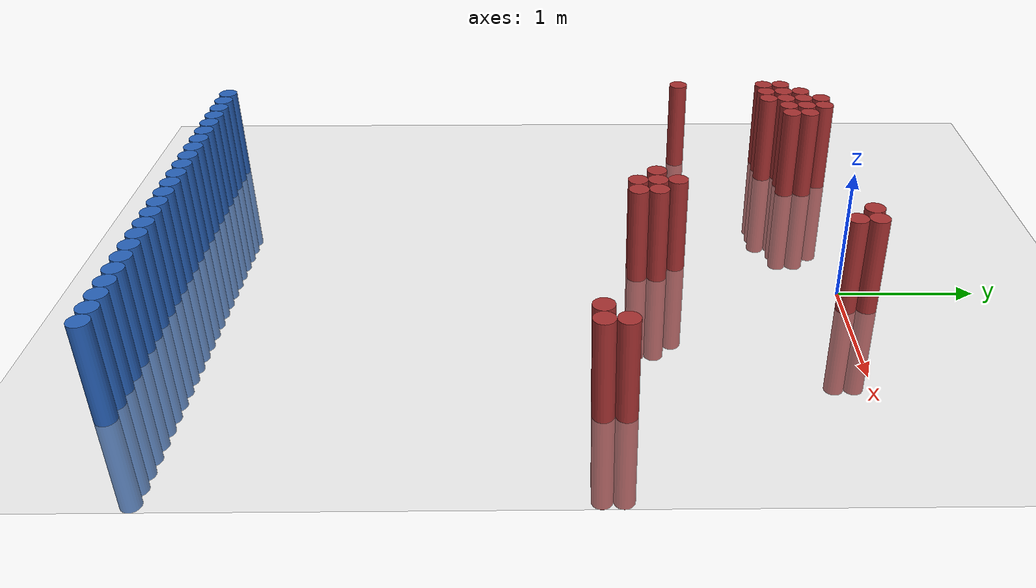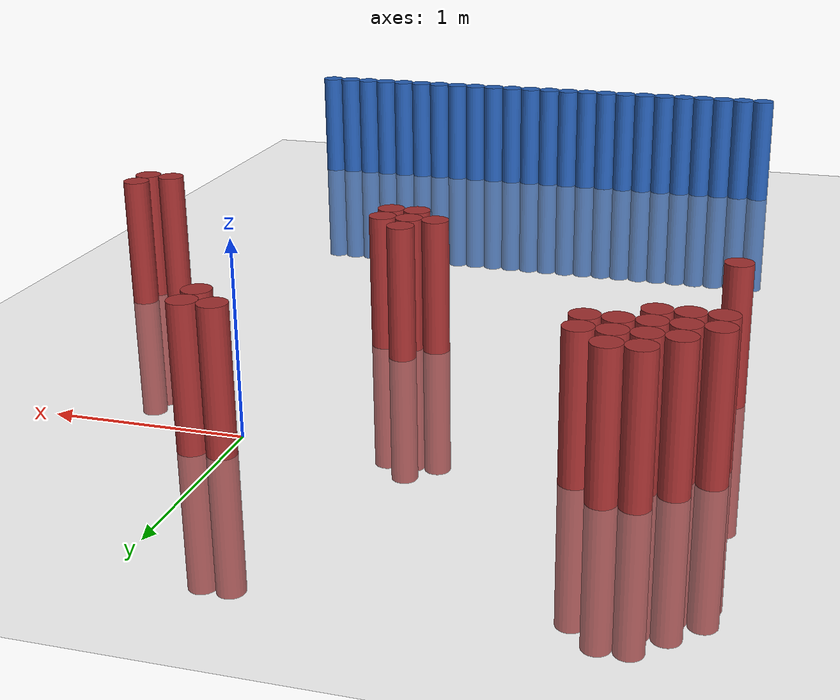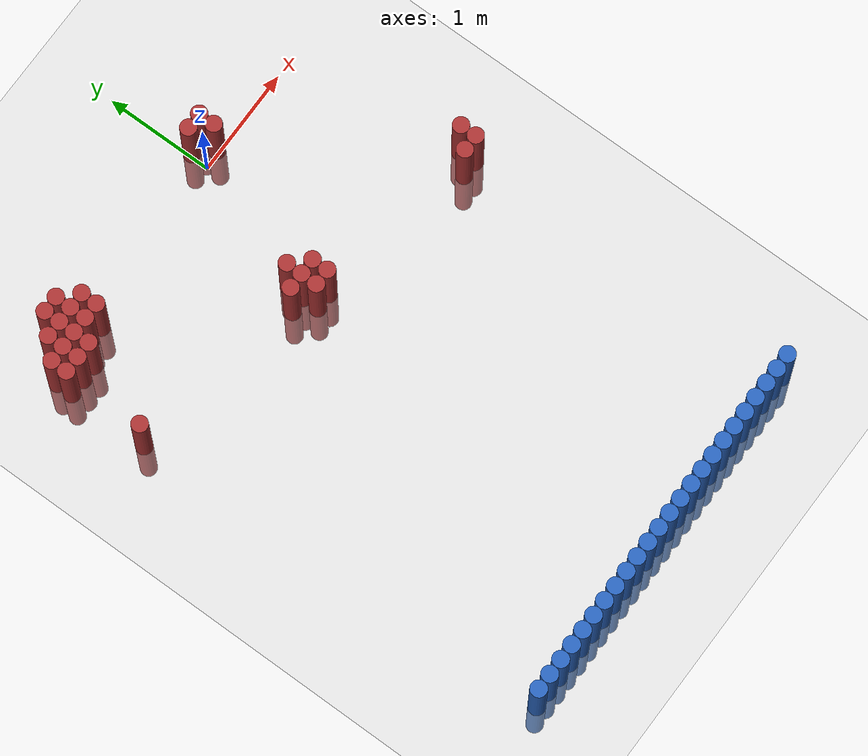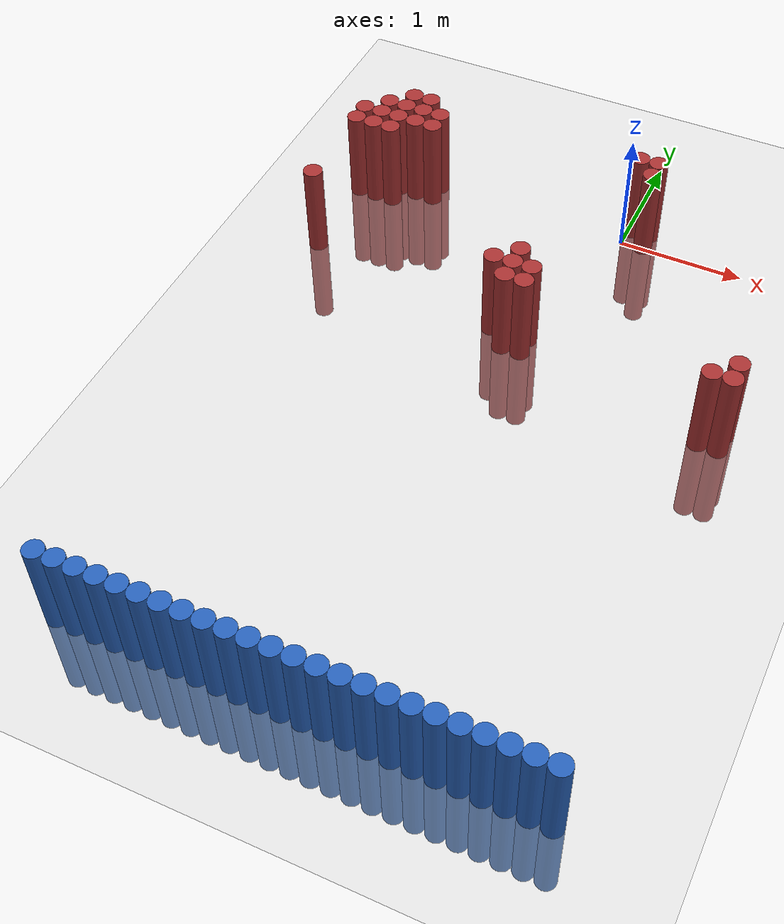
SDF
<sdf version="1.6">
 <world name="default">
  <model name="ground_plane">
   <static>1</static>
   <link name="link">
    <collision name="collision">
     <geometry><plane><normal>0 0 1</normal><size>100 100</size></plane></geometry>
     <surface><friction><ode><mu>100</mu><mu2>50</mu2></ode></friction></surface>
    </collision>
    <visual name="visual">
     <cast_shadows>0</cast_shadows>
     <geometry><plane><normal>0 0 1</normal><size>100 100</size></plane></geometry>
     <material>
      <script><uri>file://media/materials/scripts/gazebo.material</uri><name>Gazebo/Grey</name></script>
     </material>
    </visual>
   </link>
  </model>
  <model name="unit_cylinder_17">
   <static>1</static>
   <pose>1.375000 -4.925000 0.000000 0.000000 0.000000 0.000000</pose>
   <link name="link">
    <inertial>
     <mass>1</mass>
     <inertia><ixx>0.145833</ixx><ixy>0</ixy><ixz>0</ixz><iyy>0.145833</iyy><iyz>0</iyz><izz>0.125</izz></inertia>
    </inertial>
    <collision name="collision">
     <geometry><cylinder><radius>0.075000</radius><length>1.5</length></cylinder></geometry>
    </collision>
    <visual name="visual">
     <geometry><cylinder><radius>0.075000</radius><length>1.5</length></cylinder></geometry>
     <material>
      <ambient>0.152000 0.379000 0.720000 1</ambient>
      <diffuse>0.152000 0.379000 0.720000 1</diffuse>
     </material>
     <material>
      <script><name>Gazebo/Grey</name><uri>file://media/materials/scripts/gazebo.material</uri></script>
     </material>
    </visual>
   </link>
  </model>
  <model name="unit_cylinder_18">
   <static>1</static>
   <pose>1.225000 -4.925000 0.000000 0.000000 0.000000 0.000000</pose>
   <link name="link">
    <inertial>
     <mass>1</mass>
     <inertia><ixx>0.145833</ixx><ixy>0</ixy><ixz>0</ixz><iyy>0.145833</iyy><iyz>0</iyz><izz>0.125</izz></inertia>
    </inertial>
    <collision name="collision">
     <geometry><cylinder><radius>0.075000</radius><length>1.5</length></cylinder></geometry>
    </collision>
    <visual name="visual">
     <geometry><cylinder><radius>0.075000</radius><length>1.5</length></cylinder></geometry>
     <material>
      <ambient>0.152000 0.379000 0.720000 1</ambient>
      <diffuse>0.152000 0.379000 0.720000 1</diffuse>
     </material>
     <material>
      <script><name>Gazebo/Grey</name><uri>file://media/materials/scripts/gazebo.material</uri></script>
     </material>
    </visual>
   </link>
  </model>
  <model name="unit_cylinder_19">
   <static>1</static>
   <pose>1.075000 -4.925000 0.000000 0.000000 0.000000 0.000000</pose>
   <link name="link">
    <inertial>
     <mass>1</mass>
     <inertia><ixx>0.145833</ixx><ixy>0</ixy><ixz>0</ixz><iyy>0.145833</iyy><iyz>0</iyz><izz>0.125</izz></inertia>
    </inertial>
    <collision name="collision">
     <geometry><cylinder><radius>0.075000</radius><length>1.5</length></cylinder></geometry>
    </collision>
    <visual name="visual">
     <geometry><cylinder><radius>0.075000</radius><length>1.5</length></cylinder></geometry>
     <material>
      <ambient>0.152000 0.379000 0.720000 1</ambient>
      <diffuse>0.152000 0.379000 0.720000 1</diffuse>
     </material>
     <material>
      <script><name>Gazebo/Grey</name><uri>file://media/materials/scripts/gazebo.material</uri></script>
     </material>
    </visual>
   </link>
  </model>
  <model name="unit_cylinder_20">
   <static>1</static>
   <pose>0.925000 -4.925000 0.000000 0.000000 0.000000 0.000000</pose>
   <link name="link">
    <inertial>
     <mass>1</mass>
     <inertia><ixx>0.145833</ixx><ixy>0</ixy><ixz>0</ixz><iyy>0.145833</iyy><iyz>0</iyz><izz>0.125</izz></inertia>
    </inertial>
    <collision name="collision">
     <geometry><cylinder><radius>0.075000</radius><length>1.5</length></cylinder></geometry>
    </collision>
    <visual name="visual">
     <geometry><cylinder><radius>0.075000</radius><length>1.5</length></cylinder></geometry>
     <material>
      <ambient>0.152000 0.379000 0.720000 1</ambient>
      <diffuse>0.152000 0.379000 0.720000 1</diffuse>
     </material>
     <material>
      <script><name>Gazebo/Grey</name><uri>file://media/materials/scripts/gazebo.material</uri></script>
     </material>
    </visual>
   </link>
  </model>
  <model name="unit_cylinder_21">
   <static>1</static>
   <pose>0.775000 -4.925000 0.000000 0.000000 0.000000 0.000000</pose>
   <link name="link">
    <inertial>
     <mass>1</mass>
     <inertia><ixx>0.145833</ixx><ixy>0</ixy><ixz>0</ixz><iyy>0.145833</iyy><iyz>0</iyz><izz>0.125</izz></inertia>
    </inertial>
    <collision name="collision">
     <geometry><cylinder><radius>0.075000</radius><length>1.5</length></cylinder></geometry>
    </collision>
    <visual name="visual">
     <geometry><cylinder><radius>0.075000</radius><length>1.5</length></cylinder></geometry>
     <material>
      <ambient>0.152000 0.379000 0.720000 1</ambient>
      <diffuse>0.152000 0.379000 0.720000 1</diffuse>
     </material>
     <material>
      <script><name>Gazebo/Grey</name><uri>file://media/materials/scripts/gazebo.material</uri></script>
     </material>
    </visual>
   </link>
  </model>
  <model name="unit_cylinder_22">
   <static>1</static>
   <pose>0.625000 -4.925000 0.000000 0.000000 0.000000 0.000000</pose>
   <link name="link">
    <inertial>
     <mass>1</mass>
     <inertia><ixx>0.145833</ixx><ixy>0</ixy><ixz>0</ixz><iyy>0.145833</iyy><iyz>0</iyz><izz>0.125</izz></inertia>
    </inertial>
    <collision name="collision">
     <geometry><cylinder><radius>0.075000</radius><length>1.5</length></cylinder></geometry>
    </collision>
    <visual name="visual">
     <geometry><cylinder><radius>0.075000</radius><length>1.5</length></cylinder></geometry>
     <material>
      <ambient>0.152000 0.379000 0.720000 1</ambient>
      <diffuse>0.152000 0.379000 0.720000 1</diffuse>
     </material>
     <material>
      <script><name>Gazebo/Grey</name><uri>file://media/materials/scripts/gazebo.material</uri></script>
     </material>
    </visual>
   </link>
  </model>
  <model name="unit_cylinder_23">
   <static>1</static>
   <pose>0.475000 -4.925000 0.000000 0.000000 0.000000 0.000000</pose>
   <link name="link">
    <inertial>
     <mass>1</mass>
     <inertia><ixx>0.145833</ixx><ixy>0</ixy><ixz>0</ixz><iyy>0.145833</iyy><iyz>0</iyz><izz>0.125</izz></inertia>
    </inertial>
    <collision name="collision">
     <geometry><cylinder><radius>0.075000</radius><length>1.5</length></cylinder></geometry>
    </collision>
    <visual name="visual">
     <geometry><cylinder><radius>0.075000</radius><length>1.5</length></cylinder></geometry>
     <material>
      <ambient>0.152000 0.379000 0.720000 1</ambient>
      <diffuse>0.152000 0.379000 0.720000 1</diffuse>
     </material>
     <material>
      <script><name>Gazebo/Grey</name><uri>file://media/materials/scripts/gazebo.material</uri></script>
     </material>
    </visual>
   </link>
  </model>
  <model name="unit_cylinder_24">
   <static>1</static>
   <pose>0.325000 -4.925000 0.000000 0.000000 0.000000 0.000000</pose>
   <link name="link">
    <inertial>
     <mass>1</mass>
     <inertia><ixx>0.145833</ixx><ixy>0</ixy><ixz>0</ixz><iyy>0.145833</iyy><iyz>0</iyz><izz>0.125</izz></inertia>
    </inertial>
    <collision name="collision">
     <geometry><cylinder><radius>0.075000</radius><length>1.5</length></cylinder></geometry>
    </collision>
    <visual name="visual">
     <geometry><cylinder><radius>0.075000</radius><length>1.5</length></cylinder></geometry>
     <material>
      <ambient>0.152000 0.379000 0.720000 1</ambient>
      <diffuse>0.152000 0.379000 0.720000 1</diffuse>
     </material>
     <material>
      <script><name>Gazebo/Grey</name><uri>file://media/materials/scripts/gazebo.material</uri></script>
     </material>
    </visual>
   </link>
  </model>
  <model name="unit_cylinder_25">
   <static>1</static>
   <pose>0.175000 -4.925000 0.000000 0.000000 0.000000 0.000000</pose>
   <link name="link">
    <inertial>
     <mass>1</mass>
     <inertia><ixx>0.145833</ixx><ixy>0</ixy><ixz>0</ixz><iyy>0.145833</iyy><iyz>0</iyz><izz>0.125</izz></inertia>
    </inertial>
    <collision name="collision">
     <geometry><cylinder><radius>0.075000</radius><length>1.5</length></cylinder></geometry>
    </collision>
    <visual name="visual">
     <geometry><cylinder><radius>0.075000</radius><length>1.5</length></cylinder></geometry>
     <material>
      <ambient>0.152000 0.379000 0.720000 1</ambient>
      <diffuse>0.152000 0.379000 0.720000 1</diffuse>
     </material>
     <material>
      <script><name>Gazebo/Grey</name><uri>file://media/materials/scripts/gazebo.material</uri></script>
     </material>
    </visual>
   </link>
  </model>
  <model name="unit_cylinder_26">
   <static>1</static>
   <pose>0.025000 -4.925000 0.000000 0.000000 0.000000 0.000000</pose>
   <link name="link">
    <inertial>
     <mass>1</mass>
     <inertia><ixx>0.145833</ixx><ixy>0</ixy><ixz>0</ixz><iyy>0.145833</iyy><iyz>0</iyz><izz>0.125</izz></inertia>
    </inertial>
    <collision name="collision">
     <geometry><cylinder><radius>0.075000</radius><length>1.5</length></cylinder></geometry>
    </collision>
    <visual name="visual">
     <geometry><cylinder><radius>0.075000</radius><length>1.5</length></cylinder></geometry>
     <material>
      <ambient>0.152000 0.379000 0.720000 1</ambient>
      <diffuse>0.152000 0.379000 0.720000 1</diffuse>
     </material>
     <material>
      <script><name>Gazebo/Grey</name><uri>file://media/materials/scripts/gazebo.material</uri></script>
     </material>
    </visual>
   </link>
  </model>
  <model name="unit_cylinder_27">
   <static>1</static>
   <pose>-0.125000 -4.925000 0.000000 0.000000 0.000000 0.000000</pose>
   <link name="link">
    <inertial>
     <mass>1</mass>
     <inertia><ixx>0.145833</ixx><ixy>0</ixy><ixz>0</ixz><iyy>0.145833</iyy><iyz>0</iyz><izz>0.125</izz></inertia>
    </inertial>
    <collision name="collision">
     <geometry><cylinder><radius>0.075000</radius><length>1.5</length></cylinder></geometry>
    </collision>
    <visual name="visual">
     <geometry><cylinder><radius>0.075000</radius><length>1.5</length></cylinder></geometry>
     <material>
      <ambient>0.152000 0.379000 0.720000 1</ambient>
      <diffuse>0.152000 0.379000 0.720000 1</diffuse>
     </material>
     <material>
      <script><name>Gazebo/Grey</name><uri>file://media/materials/scripts/gazebo.material</uri></script>
     </material>
    </visual>
   </link>
  </model>
  <model name="unit_cylinder_28">
   <static>1</static>
   <pose>-0.275000 -4.925000 0.000000 0.000000 0.000000 0.000000</pose>
   <link name="link">
    <inertial>
     <mass>1</mass>
     <inertia><ixx>0.145833</ixx><ixy>0</ixy><ixz>0</ixz><iyy>0.145833</iyy><iyz>0</iyz><izz>0.125</izz></inertia>
    </inertial>
    <collision name="collision">
     <geometry><cylinder><radius>0.075000</radius><length>1.5</length></cylinder></geometry>
    </collision>
    <visual name="visual">
     <geometry><cylinder><radius>0.075000</radius><length>1.5</length></cylinder></geometry>
     <material>
      <ambient>0.152000 0.379000 0.720000 1</ambient>
      <diffuse>0.152000 0.379000 0.720000 1</diffuse>
     </material>
     <material>
      <script><name>Gazebo/Grey</name><uri>file://media/materials/scripts/gazebo.material</uri></script>
     </material>
    </visual>
   </link>
  </model>
  <model name="unit_cylinder_29">
   <static>1</static>
   <pose>-0.425000 -4.925000 0.000000 0.000000 0.000000 0.000000</pose>
   <link name="link">
    <inertial>
     <mass>1</mass>
     <inertia><ixx>0.145833</ixx><ixy>0</ixy><ixz>0</ixz><iyy>0.145833</iyy><iyz>0</iyz><izz>0.125</izz></inertia>
    </inertial>
    <collision name="collision">
     <geometry><cylinder><radius>0.075000</radius><length>1.5</length></cylinder></geometry>
    </collision>
    <visual name="visual">
     <geometry><cylinder><radius>0.075000</radius><length>1.5</length></cylinder></geometry>
     <material>
      <ambient>0.152000 0.379000 0.720000 1</ambient>
      <diffuse>0.152000 0.379000 0.720000 1</diffuse>
     </material>
     <material>
      <script><name>Gazebo/Grey</name><uri>file://media/materials/scripts/gazebo.material</uri></script>
     </material>
    </visual>
   </link>
  </model>
  <model name="unit_cylinder_30">
   <static>1</static>
   <pose>-0.575000 -4.925000 0.000000 0.000000 0.000000 0.000000</pose>
   <link name="link">
    <inertial>
     <mass>1</mass>
     <inertia><ixx>0.145833</ixx><ixy>0</ixy><ixz>0</ixz><iyy>0.145833</iyy><iyz>0</iyz><izz>0.125</izz></inertia>
    </inertial>
    <collision name="collision">
     <geometry><cylinder><radius>0.075000</radius><length>1.5</length></cylinder></geometry>
    </collision>
    <visual name="visual">
     <geometry><cylinder><radius>0.075000</radius><length>1.5</length></cylinder></geometry>
     <material>
      <ambient>0.152000 0.379000 0.720000 1</ambient>
      <diffuse>0.152000 0.379000 0.720000 1</diffuse>
     </material>
     <material>
      <script><name>Gazebo/Grey</name><uri>file://media/materials/scripts/gazebo.material</uri></script>
     </material>
    </visual>
   </link>
  </model>
  <model name="unit_cylinder_31">
   <static>1</static>
   <pose>-0.725000 -4.925000 0.000000 0.000000 0.000000 0.000000</pose>
   <link name="link">
    <inertial>
     <mass>1</mass>
     <inertia><ixx>0.145833</ixx><ixy>0</ixy><ixz>0</ixz><iyy>0.145833</iyy><iyz>0</iyz><izz>0.125</izz></inertia>
    </inertial>
    <collision name="collision">
     <geometry><cylinder><radius>0.075000</radius><length>1.5</length></cylinder></geometry>
    </collision>
    <visual name="visual">
     <geometry><cylinder><radius>0.075000</radius><length>1.5</length></cylinder></geometry>
     <material>
      <ambient>0.152000 0.379000 0.720000 1</ambient>
      <diffuse>0.152000 0.379000 0.720000 1</diffuse>
     </material>
     <material>
      <script><name>Gazebo/Grey</name><uri>file://media/materials/scripts/gazebo.material</uri></script>
     </material>
    </visual>
   </link>
  </model>
  <model name="unit_cylinder_32">
   <static>1</static>
   <pose>-0.875000 -4.925000 0.000000 0.000000 0.000000 0.000000</pose>
   <link name="link">
    <inertial>
     <mass>1</mass>
     <inertia><ixx>0.145833</ixx><ixy>0</ixy><ixz>0</ixz><iyy>0.145833</iyy><iyz>0</iyz><izz>0.125</izz></inertia>
    </inertial>
    <collision name="collision">
     <geometry><cylinder><radius>0.075000</radius><length>1.5</length></cylinder></geometry>
    </collision>
    <visual name="visual">
     <geometry><cylinder><radius>0.075000</radius><length>1.5</length></cylinder></geometry>
     <material>
      <ambient>0.152000 0.379000 0.720000 1</ambient>
      <diffuse>0.152000 0.379000 0.720000 1</diffuse>
     </material>
     <material>
      <script><name>Gazebo/Grey</name><uri>file://media/materials/scripts/gazebo.material</uri></script>
     </material>
    </visual>
   </link>
  </model>
  <model name="unit_cylinder_33">
   <static>1</static>
   <pose>-1.025000 -4.925000 0.000000 0.000000 0.000000 0.000000</pose>
   <link name="link">
    <inertial>
     <mass>1</mass>
     <inertia><ixx>0.145833</ixx><ixy>0</ixy><ixz>0</ixz><iyy>0.145833</iyy><iyz>0</iyz><izz>0.125</izz></inertia>
    </inertial>
    <collision name="collision">
     <geometry><cylinder><radius>0.075000</radius><length>1.5</length></cylinder></geometry>
    </collision>
    <visual name="visual">
     <geometry><cylinder><radius>0.075000</radius><length>1.5</length></cylinder></geometry>
     <material>
      <ambient>0.152000 0.379000 0.720000 1</ambient>
      <diffuse>0.152000 0.379000 0.720000 1</diffuse>
     </material>
     <material>
      <script><name>Gazebo/Grey</name><uri>file://media/materials/scripts/gazebo.material</uri></script>
     </material>
    </visual>
   </link>
  </model>
  <model name="unit_cylinder_34">
   <static>1</static>
   <pose>-1.175000 -4.925000 0.000000 0.000000 0.000000 0.000000</pose>
   <link name="link">
    <inertial>
     <mass>1</mass>
     <inertia><ixx>0.145833</ixx><ixy>0</ixy><ixz>0</ixz><iyy>0.145833</iyy><iyz>0</iyz><izz>0.125</izz></inertia>
    </inertial>
    <collision name="collision">
     <geometry><cylinder><radius>0.075000</radius><length>1.5</length></cylinder></geometry>
    </collision>
    <visual name="visual">
     <geometry><cylinder><radius>0.075000</radius><length>1.5</length></cylinder></geometry>
     <material>
      <ambient>0.152000 0.379000 0.720000 1</ambient>
      <diffuse>0.152000 0.379000 0.720000 1</diffuse>
     </material>
     <material>
      <script><name>Gazebo/Grey</name><uri>file://media/materials/scripts/gazebo.material</uri></script>
     </material>
    </visual>
   </link>
  </model>
  <model name="unit_cylinder_35">
   <static>1</static>
   <pose>-1.325000 -4.925000 0.000000 0.000000 0.000000 0.000000</pose>
   <link name="link">
    <inertial>
     <mass>1</mass>
     <inertia><ixx>0.145833</ixx><ixy>0</ixy><ixz>0</ixz><iyy>0.145833</iyy><iyz>0</iyz><izz>0.125</izz></inertia>
    </inertial>
    <collision name="collision">
     <geometry><cylinder><radius>0.075000</radius><length>1.5</length></cylinder></geometry>
    </collision>
    <visual name="visual">
     <geometry><cylinder><radius>0.075000</radius><length>1.5</length></cylinder></geometry>
     <material>
      <ambient>0.152000 0.379000 0.720000 1</ambient>
      <diffuse>0.152000 0.379000 0.720000 1</diffuse>
     </material>
     <material>
      <script><name>Gazebo/Grey</name><uri>file://media/materials/scripts/gazebo.material</uri></script>
     </material>
    </visual>
   </link>
  </model>
  <model name="unit_cylinder_36">
   <static>1</static>
   <pose>-1.475000 -4.925000 0.000000 0.000000 0.000000 0.000000</pose>
   <link name="link">
    <inertial>
     <mass>1</mass>
     <inertia><ixx>0.145833</ixx><ixy>0</ixy><ixz>0</ixz><iyy>0.145833</iyy><iyz>0</iyz><izz>0.125</izz></inertia>
    </inertial>
    <collision name="collision">
     <geometry><cylinder><radius>0.075000</radius><length>1.5</length></cylinder></geometry>
    </collision>
    <visual name="visual">
     <geometry><cylinder><radius>0.075000</radius><length>1.5</length></cylinder></geometry>
     <material>
      <ambient>0.152000 0.379000 0.720000 1</ambient>
      <diffuse>0.152000 0.379000 0.720000 1</diffuse>
     </material>
     <material>
      <script><name>Gazebo/Grey</name><uri>file://media/materials/scripts/gazebo.material</uri></script>
     </material>
    </visual>
   </link>
  </model>
  <model name="unit_cylinder_37">
   <static>1</static>
   <pose>-1.625000 -4.925000 0.000000 0.000000 0.000000 0.000000</pose>
   <link name="link">
    <inertial>
     <mass>1</mass>
     <inertia><ixx>0.145833</ixx><ixy>0</ixy><ixz>0</ixz><iyy>0.145833</iyy><iyz>0</iyz><izz>0.125</izz></inertia>
    </inertial>
    <collision name="collision">
     <geometry><cylinder><radius>0.075000</radius><length>1.5</length></cylinder></geometry>
    </collision>
    <visual name="visual">
     <geometry><cylinder><radius>0.075000</radius><length>1.5</length></cylinder></geometry>
     <material>
      <ambient>0.152000 0.379000 0.720000 1</ambient>
      <diffuse>0.152000 0.379000 0.720000 1</diffuse>
     </material>
     <material>
      <script><name>Gazebo/Grey</name><uri>file://media/materials/scripts/gazebo.material</uri></script>
     </material>
    </visual>
   </link>
  </model>
  <model name="unit_cylinder_38">
   <static>1</static>
   <pose>-1.775000 -4.925000 0.000000 0.000000 0.000000 0.000000</pose>
   <link name="link">
    <inertial>
     <mass>1</mass>
     <inertia><ixx>0.145833</ixx><ixy>0</ixy><ixz>0</ixz><iyy>0.145833</iyy><iyz>0</iyz><izz>0.125</izz></inertia>
    </inertial>
    <collision name="collision">
     <geometry><cylinder><radius>0.075000</radius><length>1.5</length></cylinder></geometry>
    </collision>
    <visual name="visual">
     <geometry><cylinder><radius>0.075000</radius><length>1.5</length></cylinder></geometry>
     <material>
      <ambient>0.152000 0.379000 0.720000 1</ambient>
      <diffuse>0.152000 0.379000 0.720000 1</diffuse>
     </material>
     <material>
      <script><name>Gazebo/Grey</name><uri>file://media/materials/scripts/gazebo.material</uri></script>
     </material>
    </visual>
   </link>
  </model>
  <model name="unit_cylinder_39">
   <static>1</static>
   <pose>-1.925000 -4.925000 0.000000 0.000000 0.000000 0.000000</pose>
   <link name="link">
    <inertial>
     <mass>1</mass>
     <inertia><ixx>0.145833</ixx><ixy>0</ixy><ixz>0</ixz><iyy>0.145833</iyy><iyz>0</iyz><izz>0.125</izz></inertia>
    </inertial>
    <collision name="collision">
     <geometry><cylinder><radius>0.075000</radius><length>1.5</length></cylinder></geometry>
    </collision>
    <visual name="visual">
     <geometry><cylinder><radius>0.075000</radius><length>1.5</length></cylinder></geometry>
     <material>
      <ambient>0.152000 0.379000 0.720000 1</ambient>
      <diffuse>0.152000 0.379000 0.720000 1</diffuse>
     </material>
     <material>
      <script><name>Gazebo/Grey</name><uri>file://media/materials/scripts/gazebo.material</uri></script>
     </material>
    </visual>
   </link>
  </model>
  <model name="unit_cylinder_40">
   <static>1</static>
   <pose>-2.075000 -4.925000 0.000000 0.000000 0.000000 0.000000</pose>
   <link name="link">
    <inertial>
     <mass>1</mass>
     <inertia><ixx>0.145833</ixx><ixy>0</ixy><ixz>0</ixz><iyy>0.145833</iyy><iyz>0</iyz><izz>0.125</izz></inertia>
    </inertial>
    <collision name="collision">
     <geometry><cylinder><radius>0.075000</radius><length>1.5</length></cylinder></geometry>
    </collision>
    <visual name="visual">
     <geometry><cylinder><radius>0.075000</radius><length>1.5</length></cylinder></geometry>
     <material>
      <ambient>0.152000 0.379000 0.720000 1</ambient>
      <diffuse>0.152000 0.379000 0.720000 1</diffuse>
     </material>
     <material>
      <script><name>Gazebo/Grey</name><uri>file://media/materials/scripts/gazebo.material</uri></script>
     </material>
    </visual>
   </link>
  </model>
  <model name="unit_cylinder_331">
   <static>1</static>
   <pose>-2.225000 -1.025000 0.000000 0.000000 0.000000 0.000000</pose>
   <link name="link">
    <inertial>
     <mass>1</mass>
     <inertia><ixx>0.145833</ixx><ixy>0</ixy><ixz>0</ixz><iyy>0.145833</iyy><iyz>0</iyz><izz>0.125</izz></inertia>
    </inertial>
    <collision name="collision">
     <geometry><cylinder><radius>0.075000</radius><length>1.5</length></cylinder></geometry>
    </collision>
    <visual name="visual">
     <geometry><cylinder><radius>0.075000</radius><length>1.5</length></cylinder></geometry>
     <material>
      <ambient>0.648000 0.192000 0.192000 1</ambient>
      <diffuse>0.648000 0.192000 0.192000 1</diffuse>
     </material>
     <material>
      <script><name>Gazebo/Grey</name><uri>file://media/materials/scripts/gazebo.material</uri></script>
     </material>
    </visual>
   </link>
  </model>
  <model name="unit_cylinder_332">
   <static>1</static>
   <pose>-2.225000 -0.275000 0.000000 0.000000 0.000000 0.000000</pose>
   <link name="link">
    <inertial>
     <mass>1</mass>
     <inertia><ixx>0.145833</ixx><ixy>0</ixy><ixz>0</ixz><iyy>0.145833</iyy><iyz>0</iyz><izz>0.125</izz></inertia>
    </inertial>
    <collision name="collision">
     <geometry><cylinder><radius>0.075000</radius><length>1.5</length></cylinder></geometry>
    </collision>
    <visual name="visual">
     <geometry><cylinder><radius>0.075000</radius><length>1.5</length></cylinder></geometry>
     <material>
      <ambient>0.648000 0.192000 0.192000 1</ambient>
      <diffuse>0.648000 0.192000 0.192000 1</diffuse>
     </material>
     <material>
      <script><name>Gazebo/Grey</name><uri>file://media/materials/scripts/gazebo.material</uri></script>
     </material>
    </visual>
   </link>
  </model>
  <model name="unit_cylinder_333">
   <static>1</static>
   <pose>-2.225000 -0.125000 0.000000 0.000000 0.000000 0.000000</pose>
   <link name="link">
    <inertial>
     <mass>1</mass>
     <inertia><ixx>0.145833</ixx><ixy>0</ixy><ixz>0</ixz><iyy>0.145833</iyy><iyz>0</iyz><izz>0.125</izz></inertia>
    </inertial>
    <collision name="collision">
     <geometry><cylinder><radius>0.075000</radius><length>1.5</length></cylinder></geometry>
    </collision>
    <visual name="visual">
     <geometry><cylinder><radius>0.075000</radius><length>1.5</length></cylinder></geometry>
     <material>
      <ambient>0.648000 0.192000 0.192000 1</ambient>
      <diffuse>0.648000 0.192000 0.192000 1</diffuse>
     </material>
     <material>
      <script><name>Gazebo/Grey</name><uri>file://media/materials/scripts/gazebo.material</uri></script>
     </material>
    </visual>
   </link>
  </model>
  <model name="unit_cylinder_342">
   <static>1</static>
   <pose>-2.075000 -0.275000 0.000000 0.000000 0.000000 0.000000</pose>
   <link name="link">
    <inertial>
     <mass>1</mass>
     <inertia><ixx>0.145833</ixx><ixy>0</ixy><ixz>0</ixz><iyy>0.145833</iyy><iyz>0</iyz><izz>0.125</izz></inertia>
    </inertial>
    <collision name="collision">
     <geometry><cylinder><radius>0.075000</radius><length>1.5</length></cylinder></geometry>
    </collision>
    <visual name="visual">
     <geometry><cylinder><radius>0.075000</radius><length>1.5</length></cylinder></geometry>
     <material>
      <ambient>0.648000 0.192000 0.192000 1</ambient>
      <diffuse>0.648000 0.192000 0.192000 1</diffuse>
     </material>
     <material>
      <script><name>Gazebo/Grey</name><uri>file://media/materials/scripts/gazebo.material</uri></script>
     </material>
    </visual>
   </link>
  </model>
  <model name="unit_cylinder_343">
   <static>1</static>
   <pose>-2.075000 -0.125000 0.000000 0.000000 0.000000 0.000000</pose>
   <link name="link">
    <inertial>
     <mass>1</mass>
     <inertia><ixx>0.145833</ixx><ixy>0</ixy><ixz>0</ixz><iyy>0.145833</iyy><iyz>0</iyz><izz>0.125</izz></inertia>
    </inertial>
    <collision name="collision">
     <geometry><cylinder><radius>0.075000</radius><length>1.5</length></cylinder></geometry>
    </collision>
    <visual name="visual">
     <geometry><cylinder><radius>0.075000</radius><length>1.5</length></cylinder></geometry>
     <material>
      <ambient>0.648000 0.192000 0.192000 1</ambient>
      <diffuse>0.648000 0.192000 0.192000 1</diffuse>
     </material>
     <material>
      <script><name>Gazebo/Grey</name><uri>file://media/materials/scripts/gazebo.material</uri></script>
     </material>
    </visual>
   </link>
  </model>
  <model name="unit_cylinder_344">
   <static>1</static>
   <pose>-2.075000 0.025000 0.000000 0.000000 0.000000 0.000000</pose>
   <link name="link">
    <inertial>
     <mass>1</mass>
     <inertia><ixx>0.145833</ixx><ixy>0</ixy><ixz>0</ixz><iyy>0.145833</iyy><iyz>0</iyz><izz>0.125</izz></inertia>
    </inertial>
    <collision name="collision">
     <geometry><cylinder><radius>0.075000</radius><length>1.5</length></cylinder></geometry>
    </collision>
    <visual name="visual">
     <geometry><cylinder><radius>0.075000</radius><length>1.5</length></cylinder></geometry>
     <material>
      <ambient>0.648000 0.192000 0.192000 1</ambient>
      <diffuse>0.648000 0.192000 0.192000 1</diffuse>
     </material>
     <material>
      <script><name>Gazebo/Grey</name><uri>file://media/materials/scripts/gazebo.material</uri></script>
     </material>
    </visual>
   </link>
  </model>
  <model name="unit_cylinder_346">
   <static>1</static>
   <pose>-1.925000 -0.275000 0.000000 0.000000 0.000000 0.000000</pose>
   <link name="link">
    <inertial>
     <mass>1</mass>
     <inertia><ixx>0.145833</ixx><ixy>0</ixy><ixz>0</ixz><iyy>0.145833</iyy><iyz>0</iyz><izz>0.125</izz></inertia>
    </inertial>
    <collision name="collision">
     <geometry><cylinder><radius>0.075000</radius><length>1.5</length></cylinder></geometry>
    </collision>
    <visual name="visual">
     <geometry><cylinder><radius>0.075000</radius><length>1.5</length></cylinder></geometry>
     <material>
      <ambient>0.648000 0.192000 0.192000 1</ambient>
      <diffuse>0.648000 0.192000 0.192000 1</diffuse>
     </material>
     <material>
      <script><name>Gazebo/Grey</name><uri>file://media/materials/scripts/gazebo.material</uri></script>
     </material>
    </visual>
   </link>
  </model>
  <model name="unit_cylinder_347">
   <static>1</static>
   <pose>-1.925000 -0.125000 0.000000 0.000000 0.000000 0.000000</pose>
   <link name="link">
    <inertial>
     <mass>1</mass>
     <inertia><ixx>0.145833</ixx><ixy>0</ixy><ixz>0</ixz><iyy>0.145833</iyy><iyz>0</iyz><izz>0.125</izz></inertia>
    </inertial>
    <collision name="collision">
     <geometry><cylinder><radius>0.075000</radius><length>1.5</length></cylinder></geometry>
    </collision>
    <visual name="visual">
     <geometry><cylinder><radius>0.075000</radius><length>1.5</length></cylinder></geometry>
     <material>
      <ambient>0.648000 0.192000 0.192000 1</ambient>
      <diffuse>0.648000 0.192000 0.192000 1</diffuse>
     </material>
     <material>
      <script><name>Gazebo/Grey</name><uri>file://media/materials/scripts/gazebo.material</uri></script>
     </material>
    </visual>
   </link>
  </model>
  <model name="unit_cylinder_348">
   <static>1</static>
   <pose>-1.925000 0.025000 0.000000 0.000000 0.000000 0.000000</pose>
   <link name="link">
    <inertial>
     <mass>1</mass>
     <inertia><ixx>0.145833</ixx><ixy>0</ixy><ixz>0</ixz><iyy>0.145833</iyy><iyz>0</iyz><izz>0.125</izz></inertia>
    </inertial>
    <collision name="collision">
     <geometry><cylinder><radius>0.075000</radius><length>1.5</length></cylinder></geometry>
    </collision>
    <visual name="visual">
     <geometry><cylinder><radius>0.075000</radius><length>1.5</length></cylinder></geometry>
     <material>
      <ambient>0.648000 0.192000 0.192000 1</ambient>
      <diffuse>0.648000 0.192000 0.192000 1</diffuse>
     </material>
     <material>
      <script><name>Gazebo/Grey</name><uri>file://media/materials/scripts/gazebo.material</uri></script>
     </material>
    </visual>
   </link>
  </model>
  <model name="unit_cylinder_349">
   <static>1</static>
   <pose>-1.925000 0.175000 0.000000 0.000000 0.000000 0.000000</pose>
   <link name="link">
    <inertial>
     <mass>1</mass>
     <inertia><ixx>0.145833</ixx><ixy>0</ixy><ixz>0</ixz><iyy>0.145833</iyy><iyz>0</iyz><izz>0.125</izz></inertia>
    </inertial>
    <collision name="collision">
     <geometry><cylinder><radius>0.075000</radius><length>1.5</length></cylinder></geometry>
    </collision>
    <visual name="visual">
     <geometry><cylinder><radius>0.075000</radius><length>1.5</length></cylinder></geometry>
     <material>
      <ambient>0.648000 0.192000 0.192000 1</ambient>
      <diffuse>0.648000 0.192000 0.192000 1</diffuse>
     </material>
     <material>
      <script><name>Gazebo/Grey</name><uri>file://media/materials/scripts/gazebo.material</uri></script>
     </material>
    </visual>
   </link>
  </model>
  <model name="unit_cylinder_350">
   <static>1</static>
   <pose>-1.775000 -0.125000 0.000000 0.000000 0.000000 0.000000</pose>
   <link name="link">
    <inertial>
     <mass>1</mass>
     <inertia><ixx>0.145833</ixx><ixy>0</ixy><ixz>0</ixz><iyy>0.145833</iyy><iyz>0</iyz><izz>0.125</izz></inertia>
    </inertial>
    <collision name="collision">
     <geometry><cylinder><radius>0.075000</radius><length>1.5</length></cylinder></geometry>
    </collision>
    <visual name="visual">
     <geometry><cylinder><radius>0.075000</radius><length>1.5</length></cylinder></geometry>
     <material>
      <ambient>0.648000 0.192000 0.192000 1</ambient>
      <diffuse>0.648000 0.192000 0.192000 1</diffuse>
     </material>
     <material>
      <script><name>Gazebo/Grey</name><uri>file://media/materials/scripts/gazebo.material</uri></script>
     </material>
    </visual>
   </link>
  </model>
  <model name="unit_cylinder_351">
   <static>1</static>
   <pose>-1.775000 0.025000 0.000000 0.000000 0.000000 0.000000</pose>
   <link name="link">
    <inertial>
     <mass>1</mass>
     <inertia><ixx>0.145833</ixx><ixy>0</ixy><ixz>0</ixz><iyy>0.145833</iyy><iyz>0</iyz><izz>0.125</izz></inertia>
    </inertial>
    <collision name="collision">
     <geometry><cylinder><radius>0.075000</radius><length>1.5</length></cylinder></geometry>
    </collision>
    <visual name="visual">
     <geometry><cylinder><radius>0.075000</radius><length>1.5</length></cylinder></geometry>
     <material>
      <ambient>0.648000 0.192000 0.192000 1</ambient>
      <diffuse>0.648000 0.192000 0.192000 1</diffuse>
     </material>
     <material>
      <script><name>Gazebo/Grey</name><uri>file://media/materials/scripts/gazebo.material</uri></script>
     </material>
    </visual>
   </link>
  </model>
  <model name="unit_cylinder_352">
   <static>1</static>
   <pose>-1.775000 0.175000 0.000000 0.000000 0.000000 0.000000</pose>
   <link name="link">
    <inertial>
     <mass>1</mass>
     <inertia><ixx>0.145833</ixx><ixy>0</ixy><ixz>0</ixz><iyy>0.145833</iyy><iyz>0</iyz><izz>0.125</izz></inertia>
    </inertial>
    <collision name="collision">
     <geometry><cylinder><radius>0.075000</radius><length>1.5</length></cylinder></geometry>
    </collision>
    <visual name="visual">
     <geometry><cylinder><radius>0.075000</radius><length>1.5</length></cylinder></geometry>
     <material>
      <ambient>0.648000 0.192000 0.192000 1</ambient>
      <diffuse>0.648000 0.192000 0.192000 1</diffuse>
     </material>
     <material>
      <script><name>Gazebo/Grey</name><uri>file://media/materials/scripts/gazebo.material</uri></script>
     </material>
    </visual>
   </link>
  </model>
  <model name="unit_cylinder_353">
   <static>1</static>
   <pose>-1.625000 -0.125000 0.000000 0.000000 0.000000 0.000000</pose>
   <link name="link">
    <inertial>
     <mass>1</mass>
     <inertia><ixx>0.145833</ixx><ixy>0</ixy><ixz>0</ixz><iyy>0.145833</iyy><iyz>0</iyz><izz>0.125</izz></inertia>
    </inertial>
    <collision name="collision">
     <geometry><cylinder><radius>0.075000</radius><length>1.5</length></cylinder></geometry>
    </collision>
    <visual name="visual">
     <geometry><cylinder><radius>0.075000</radius><length>1.5</length></cylinder></geometry>
     <material>
      <ambient>0.648000 0.192000 0.192000 1</ambient>
      <diffuse>0.648000 0.192000 0.192000 1</diffuse>
     </material>
     <material>
      <script><name>Gazebo/Grey</name><uri>file://media/materials/scripts/gazebo.material</uri></script>
     </material>
    </visual>
   </link>
  </model>
  <model name="unit_cylinder_354">
   <static>1</static>
   <pose>-1.625000 0.025000 0.000000 0.000000 0.000000 0.000000</pose>
   <link name="link">
    <inertial>
     <mass>1</mass>
     <inertia><ixx>0.145833</ixx><ixy>0</ixy><ixz>0</ixz><iyy>0.145833</iyy><iyz>0</iyz><izz>0.125</izz></inertia>
    </inertial>
    <collision name="collision">
     <geometry><cylinder><radius>0.075000</radius><length>1.5</length></cylinder></geometry>
    </collision>
    <visual name="visual">
     <geometry><cylinder><radius>0.075000</radius><length>1.5</length></cylinder></geometry>
     <material>
      <ambient>0.648000 0.192000 0.192000 1</ambient>
      <diffuse>0.648000 0.192000 0.192000 1</diffuse>
     </material>
     <material>
      <script><name>Gazebo/Grey</name><uri>file://media/materials/scripts/gazebo.material</uri></script>
     </material>
    </visual>
   </link>
  </model>
  <model name="unit_cylinder_373">
   <static>1</static>
   <pose>-0.575000 -1.325000 0.000000 0.000000 0.000000 0.000000</pose>
   <link name="link">
    <inertial>
     <mass>1</mass>
     <inertia><ixx>0.145833</ixx><ixy>0</ixy><ixz>0</ixz><iyy>0.145833</iyy><iyz>0</iyz><izz>0.125</izz></inertia>
    </inertial>
    <collision name="collision">
     <geometry><cylinder><radius>0.075000</radius><length>1.5</length></cylinder></geometry>
    </collision>
    <visual name="visual">
     <geometry><cylinder><radius>0.075000</radius><length>1.5</length></cylinder></geometry>
     <material>
      <ambient>0.648000 0.192000 0.192000 1</ambient>
      <diffuse>0.648000 0.192000 0.192000 1</diffuse>
     </material>
     <material>
      <script><name>Gazebo/Grey</name><uri>file://media/materials/scripts/gazebo.material</uri></script>
     </material>
    </visual>
   </link>
  </model>
  <model name="unit_cylinder_378">
   <static>1</static>
   <pose>-0.425000 -1.475000 0.000000 0.000000 0.000000 0.000000</pose>
   <link name="link">
    <inertial>
     <mass>1</mass>
     <inertia><ixx>0.145833</ixx><ixy>0</ixy><ixz>0</ixz><iyy>0.145833</iyy><iyz>0</iyz><izz>0.125</izz></inertia>
    </inertial>
    <collision name="collision">
     <geometry><cylinder><radius>0.075000</radius><length>1.5</length></cylinder></geometry>
    </collision>
    <visual name="visual">
     <geometry><cylinder><radius>0.075000</radius><length>1.5</length></cylinder></geometry>
     <material>
      <ambient>0.648000 0.192000 0.192000 1</ambient>
      <diffuse>0.648000 0.192000 0.192000 1</diffuse>
     </material>
     <material>
      <script><name>Gazebo/Grey</name><uri>file://media/materials/scripts/gazebo.material</uri></script>
     </material>
    </visual>
   </link>
  </model>
  <model name="unit_cylinder_379">
   <static>1</static>
   <pose>-0.425000 -1.325000 0.000000 0.000000 0.000000 0.000000</pose>
   <link name="link">
    <inertial>
     <mass>1</mass>
     <inertia><ixx>0.145833</ixx><ixy>0</ixy><ixz>0</ixz><iyy>0.145833</iyy><iyz>0</iyz><izz>0.125</izz></inertia>
    </inertial>
    <collision name="collision">
     <geometry><cylinder><radius>0.075000</radius><length>1.5</length></cylinder></geometry>
    </collision>
    <visual name="visual">
     <geometry><cylinder><radius>0.075000</radius><length>1.5</length></cylinder></geometry>
     <material>
      <ambient>0.648000 0.192000 0.192000 1</ambient>
      <diffuse>0.648000 0.192000 0.192000 1</diffuse>
     </material>
     <material>
      <script><name>Gazebo/Grey</name><uri>file://media/materials/scripts/gazebo.material</uri></script>
     </material>
    </visual>
   </link>
  </model>
  <model name="unit_cylinder_380">
   <static>1</static>
   <pose>-0.425000 -1.175000 0.000000 0.000000 0.000000 0.000000</pose>
   <link name="link">
    <inertial>
     <mass>1</mass>
     <inertia><ixx>0.145833</ixx><ixy>0</ixy><ixz>0</ixz><iyy>0.145833</iyy><iyz>0</iyz><izz>0.125</izz></inertia>
    </inertial>
    <collision name="collision">
     <geometry><cylinder><radius>0.075000</radius><length>1.5</length></cylinder></geometry>
    </collision>
    <visual name="visual">
     <geometry><cylinder><radius>0.075000</radius><length>1.5</length></cylinder></geometry>
     <material>
      <ambient>0.648000 0.192000 0.192000 1</ambient>
      <diffuse>0.648000 0.192000 0.192000 1</diffuse>
     </material>
     <material>
      <script><name>Gazebo/Grey</name><uri>file://media/materials/scripts/gazebo.material</uri></script>
     </material>
    </visual>
   </link>
  </model>
  <model name="unit_cylinder_390">
   <static>1</static>
   <pose>-0.275000 -1.475000 0.000000 0.000000 0.000000 0.000000</pose>
   <link name="link">
    <inertial>
     <mass>1</mass>
     <inertia><ixx>0.145833</ixx><ixy>0</ixy><ixz>0</ixz><iyy>0.145833</iyy><iyz>0</iyz><izz>0.125</izz></inertia>
    </inertial>
    <collision name="collision">
     <geometry><cylinder><radius>0.075000</radius><length>1.5</length></cylinder></geometry>
    </collision>
    <visual name="visual">
     <geometry><cylinder><radius>0.075000</radius><length>1.5</length></cylinder></geometry>
     <material>
      <ambient>0.648000 0.192000 0.192000 1</ambient>
      <diffuse>0.648000 0.192000 0.192000 1</diffuse>
     </material>
     <material>
      <script><name>Gazebo/Grey</name><uri>file://media/materials/scripts/gazebo.material</uri></script>
     </material>
    </visual>
   </link>
  </model>
  <model name="unit_cylinder_391">
   <static>1</static>
   <pose>-0.275000 -1.325000 0.000000 0.000000 0.000000 0.000000</pose>
   <link name="link">
    <inertial>
     <mass>1</mass>
     <inertia><ixx>0.145833</ixx><ixy>0</ixy><ixz>0</ixz><iyy>0.145833</iyy><iyz>0</iyz><izz>0.125</izz></inertia>
    </inertial>
    <collision name="collision">
     <geometry><cylinder><radius>0.075000</radius><length>1.5</length></cylinder></geometry>
    </collision>
    <visual name="visual">
     <geometry><cylinder><radius>0.075000</radius><length>1.5</length></cylinder></geometry>
     <material>
      <ambient>0.648000 0.192000 0.192000 1</ambient>
      <diffuse>0.648000 0.192000 0.192000 1</diffuse>
     </material>
     <material>
      <script><name>Gazebo/Grey</name><uri>file://media/materials/scripts/gazebo.material</uri></script>
     </material>
    </visual>
   </link>
  </model>
  <model name="unit_cylinder_407">
   <static>1</static>
   <pose>0.025000 0.175000 0.000000 0.000000 0.000000 0.000000</pose>
   <link name="link">
    <inertial>
     <mass>1</mass>
     <inertia><ixx>0.145833</ixx><ixy>0</ixy><ixz>0</ixz><iyy>0.145833</iyy><iyz>0</iyz><izz>0.125</izz></inertia>
    </inertial>
    <collision name="collision">
     <geometry><cylinder><radius>0.075000</radius><length>1.5</length></cylinder></geometry>
    </collision>
    <visual name="visual">
     <geometry><cylinder><radius>0.075000</radius><length>1.5</length></cylinder></geometry>
     <material>
      <ambient>0.648000 0.192000 0.192000 1</ambient>
      <diffuse>0.648000 0.192000 0.192000 1</diffuse>
     </material>
     <material>
      <script><name>Gazebo/Grey</name><uri>file://media/materials/scripts/gazebo.material</uri></script>
     </material>
    </visual>
   </link>
  </model>
  <model name="unit_cylinder_413">
   <static>1</static>
   <pose>0.175000 0.025000 0.000000 0.000000 0.000000 0.000000</pose>
   <link name="link">
    <inertial>
     <mass>1</mass>
     <inertia><ixx>0.145833</ixx><ixy>0</ixy><ixz>0</ixz><iyy>0.145833</iyy><iyz>0</iyz><izz>0.125</izz></inertia>
    </inertial>
    <collision name="collision">
     <geometry><cylinder><radius>0.075000</radius><length>1.5</length></cylinder></geometry>
    </collision>
    <visual name="visual">
     <geometry><cylinder><radius>0.075000</radius><length>1.5</length></cylinder></geometry>
     <material>
      <ambient>0.648000 0.192000 0.192000 1</ambient>
      <diffuse>0.648000 0.192000 0.192000 1</diffuse>
     </material>
     <material>
      <script><name>Gazebo/Grey</name><uri>file://media/materials/scripts/gazebo.material</uri></script>
     </material>
    </visual>
   </link>
  </model>
  <model name="unit_cylinder_414">
   <static>1</static>
   <pose>0.175000 0.175000 0.000000 0.000000 0.000000 0.000000</pose>
   <link name="link">
    <inertial>
     <mass>1</mass>
     <inertia><ixx>0.145833</ixx><ixy>0</ixy><ixz>0</ixz><iyy>0.145833</iyy><iyz>0</iyz><izz>0.125</izz></inertia>
    </inertial>
    <collision name="collision">
     <geometry><cylinder><radius>0.075000</radius><length>1.5</length></cylinder></geometry>
    </collision>
    <visual name="visual">
     <geometry><cylinder><radius>0.075000</radius><length>1.5</length></cylinder></geometry>
     <material>
      <ambient>0.648000 0.192000 0.192000 1</ambient>
      <diffuse>0.648000 0.192000 0.192000 1</diffuse>
     </material>
     <material>
      <script><name>Gazebo/Grey</name><uri>file://media/materials/scripts/gazebo.material</uri></script>
     </material>
    </visual>
   </link>
  </model>
  <model name="unit_cylinder_424">
   <static>1</static>
   <pose>1.225000 -1.775000 0.000000 0.000000 0.000000 0.000000</pose>
   <link name="link">
    <inertial>
     <mass>1</mass>
     <inertia><ixx>0.145833</ixx><ixy>0</ixy><ixz>0</ixz><iyy>0.145833</iyy><iyz>0</iyz><izz>0.125</izz></inertia>
    </inertial>
    <collision name="collision">
     <geometry><cylinder><radius>0.075000</radius><length>1.5</length></cylinder></geometry>
    </collision>
    <visual name="visual">
     <geometry><cylinder><radius>0.075000</radius><length>1.5</length></cylinder></geometry>
     <material>
      <ambient>0.648000 0.192000 0.192000 1</ambient>
      <diffuse>0.648000 0.192000 0.192000 1</diffuse>
     </material>
     <material>
      <script><name>Gazebo/Grey</name><uri>file://media/materials/scripts/gazebo.material</uri></script>
     </material>
    </visual>
   </link>
  </model>
  <model name="unit_cylinder_425">
   <static>1</static>
   <pose>1.375000 -1.775000 0.000000 0.000000 0.000000 0.000000</pose>
   <link name="link">
    <inertial>
     <mass>1</mass>
     <inertia><ixx>0.145833</ixx><ixy>0</ixy><ixz>0</ixz><iyy>0.145833</iyy><iyz>0</iyz><izz>0.125</izz></inertia>
    </inertial>
    <collision name="collision">
     <geometry><cylinder><radius>0.075000</radius><length>1.5</length></cylinder></geometry>
    </collision>
    <visual name="visual">
     <geometry><cylinder><radius>0.075000</radius><length>1.5</length></cylinder></geometry>
     <material>
      <ambient>0.648000 0.192000 0.192000 1</ambient>
      <diffuse>0.648000 0.192000 0.192000 1</diffuse>
     </material>
     <material>
      <script><name>Gazebo/Grey</name><uri>file://media/materials/scripts/gazebo.material</uri></script>
     </material>
    </visual>
   </link>
  </model>
  <model name="unit_cylinder_426">
   <static>1</static>
   <pose>1.375000 -1.625000 0.000000 0.000000 0.000000 0.000000</pose>
   <link name="link">
    <inertial>
     <mass>1</mass>
     <inertia><ixx>0.145833</ixx><ixy>0</ixy><ixz>0</ixz><iyy>0.145833</iyy><iyz>0</iyz><izz>0.125</izz></inertia>
    </inertial>
    <collision name="collision">
     <geometry><cylinder><radius>0.075000</radius><length>1.5</length></cylinder></geometry>
    </collision>
    <visual name="visual">
     <geometry><cylinder><radius>0.075000</radius><length>1.5</length></cylinder></geometry>
     <material>
      <ambient>0.648000 0.192000 0.192000 1</ambient>
      <diffuse>0.648000 0.192000 0.192000 1</diffuse>
     </material>
     <material>
      <script><name>Gazebo/Grey</name><uri>file://media/materials/scripts/gazebo.material</uri></script>
     </material>
    </visual>
   </link>
  </model>
 </world>
</sdf>
